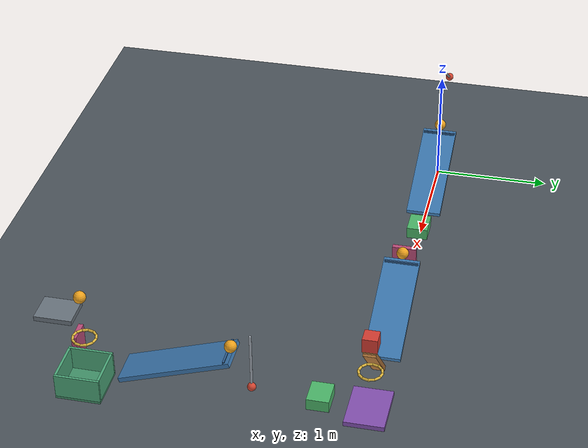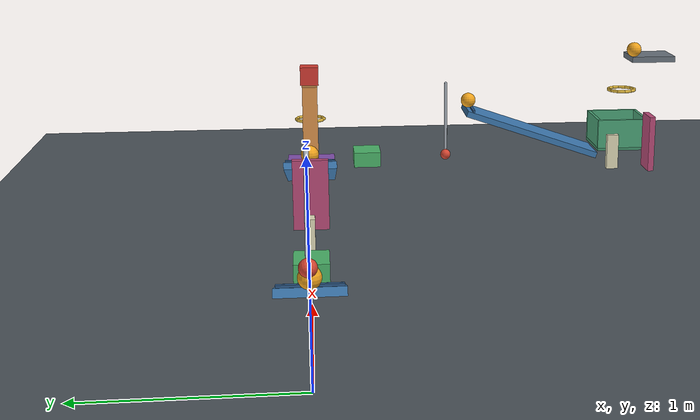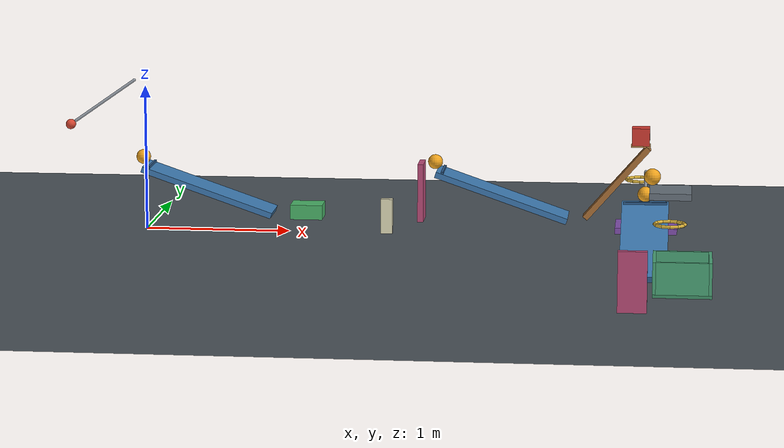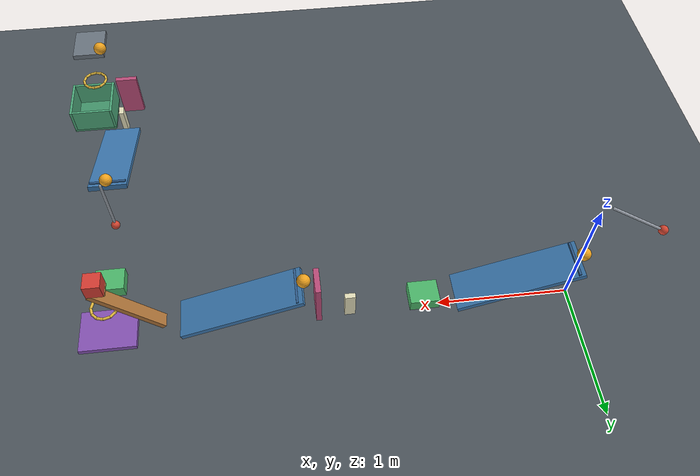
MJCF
<mujoco model="dimension_preserving_cascade">
  <compiler angle="degree" autolimits="true"/>
  <option timestep="0.002" gravity="0 0 -9.81" integrator="implicitfast" iterations="100" tolerance="1e-10"/>

  <!-- No actuators or initial velocities are used. This file has not been simulation-verified. -->
  <!-- solref damping ratio 0.690107 approximates restitution 0.05; MuJoCo does not expose an exact restitution coefficient. -->
  <!-- Ring1 retains the requested 0.16 m clear opening, which obstructs the requested rigid 0.12 m cube. -->
  <!-- Initial-overlap correction: box1 now spans x=3.52..3.88, clear of domino2 and flap2. -->
  <!-- Ring2 is laterally offset toward the relocated catch box; shelf1 and ball4 retain their initial positions. -->

  <visual>
    <headlight ambient="0.35 0.35 0.35" diffuse="0.7 0.7 0.7" specular="0.15 0.15 0.15"/>
    <global azimuth="130" elevation="-25"/>
  </visual>

  <worldbody>
    <light name="main_light" pos="2 -1 6" dir="0 0 -1" directional="true"/>
    <geom name="floor" type="plane" pos="0 0 0" size="10 10 0.1" friction="0.68 0 0" condim="3" solref="0.01 0.690107" solimp="0.95 0.95 0.001" rgba="0.30 0.33 0.36 1"/>

    <!-- Pendulum length is measured from the pivot to the bob center. -->
    <body name="pendulum1" pos="-0.075 0 1.041" euler="0 55 0">
      <joint name="pendulum1_hinge" type="hinge" axis="0 -1 0" damping="0.04" limited="true" range="0 130" solreflimit="0.004 1" solimplimit="0.99 0.99 0.001"/>
      <geom name="pendulum1_rod" type="capsule" fromto="0 0 0 0 0 -0.505" size="0.01" mass="0.10" friction="0.68 0 0" condim="3" solref="0.01 0.690107" solimp="0.95 0.95 0.001" rgba="0.65 0.68 0.72 1"/>
      <geom name="pendulum1_bob" type="sphere" pos="0 0 -0.55" size="0.035" mass="0.30" friction="0.68 0 0" condim="3" solref="0.01 0.690107" solimp="0.95 0.95 0.001" rgba="0.85 0.28 0.20 1"/>
    </body>

    <body name="ball1" pos="-0.016278 0 0.506565">
      <freejoint name="ball1_free"/>
      <geom name="ball1_sphere" type="sphere" size="0.05" mass="0.20" friction="0.68 0 0" condim="3" solref="0.01 0.690107" solimp="0.95 0.95 0.001" rgba="0.95 0.65 0.12 1"/>
    </body>

    <!-- Each ramp has a 0.95 m running surface, 0.30 m width, and 19 degree inclination. -->
    <!-- The downstream edge of each running surface is at z=0.15. -->
    <!-- Small upstream retaining lips prevent the later balls from immediately rolling away. -->
    <body name="ramp1" pos="0 0 0">
      <geom name="ramp1_surface" type="box" pos="0.442610 0 0.285735" euler="0 19 0" size="0.475 0.15 0.02" friction="0.68 0 0" condim="3" solref="0.01 0.690107" solimp="0.95 0.95 0.001" rgba="0.24 0.48 0.70 1"/>
      <geom name="ramp1_retaining_lip" type="box" pos="0.040 0 0.448" size="0.008 0.14 0.012" friction="0.68 0 0" condim="3" solref="0.01 0.690107" solimp="0.95 0.95 0.001" rgba="0.18 0.36 0.55 1"/>
    </body>

    <!-- Slide joints support the carts without additional floor friction. -->
    <body name="cart1" pos="1.128242 0 0.15">
      <joint name="cart1_slide" type="slide" axis="1 0 0" damping="0.20" limited="true" range="0 0.40" solreflimit="0.004 1" solimplimit="0.99 0.99 0.001"/>
      <geom name="cart1_chassis" type="box" size="0.11 0.09 0.05" mass="0.50" friction="0.68 0 0" condim="3" solref="0.01 0.690107" solimp="0.95 0.95 0.001" rgba="0.30 0.72 0.42 1"/>
    </body>

    <body name="domino1" pos="1.678242 0 0.12">
      <freejoint name="domino1_free"/>
      <geom name="domino1_tile" type="box" size="0.04 0.02 0.12" mass="0.25" friction="0.68 0 0" condim="3" solref="0.01 0.690107" solimp="0.95 0.95 0.001" rgba="0.90 0.88 0.74 1"/>
    </body>

    <body name="flap1" pos="1.918242 0 0.50">
      <joint name="flap1_hinge" type="hinge" axis="0 -1 0" damping="0.04" limited="true" range="0 65" solreflimit="0.004 1" solimplimit="0.99 0.99 0.001"/>
      <geom name="flap1_panel" type="box" pos="0 0 -0.20" size="0.02 0.10 0.20" mass="0.30" friction="0.68 0 0" condim="3" solref="0.01 0.690107" solimp="0.95 0.95 0.001" rgba="0.74 0.30 0.48 1"/>
    </body>

    <body name="ball2" pos="2.013722 0 0.506565">
      <freejoint name="ball2_free"/>
      <geom name="ball2_sphere" type="sphere" size="0.05" mass="0.20" friction="0.68 0 0" condim="3" solref="0.01 0.690107" solimp="0.95 0.95 0.001" rgba="0.95 0.65 0.12 1"/>
    </body>

    <body name="ramp2" pos="2.03 0 0">
      <geom name="ramp2_surface" type="box" pos="0.442610 0 0.285735" euler="0 19 0" size="0.475 0.15 0.02" friction="0.68 0 0" condim="3" solref="0.01 0.690107" solimp="0.95 0.95 0.001" rgba="0.24 0.48 0.70 1"/>
      <geom name="ramp2_retaining_lip" type="box" pos="0.040 0 0.448" size="0.008 0.14 0.012" friction="0.68 0 0" condim="3" solref="0.01 0.690107" solimp="0.95 0.95 0.001" rgba="0.18 0.36 0.55 1"/>
    </body>

    <!-- The beam starts inclined so its left end meets the low ramp exit while the block is elevated. -->
    <!-- The small carrying plate belongs to the seesaw; total seesaw mass remains 0.55 kg. -->
    <body name="seesaw1" pos="3.256552 0 0.382180" euler="0 -49 0">
      <joint name="seesaw1_hinge" type="hinge" axis="0 -1 0" damping="0.04" limited="true" range="0 40" solreflimit="0.004 1" solimplimit="0.99 0.99 0.001"/>
      <geom name="seesaw1_beam" type="box" size="0.325 0.05 0.02" mass="0.545" friction="0.68 0 0" condim="3" solref="0.01 0.690107" solimp="0.95 0.95 0.001" rgba="0.68 0.45 0.22 1"/>
      <geom name="seesaw1_carrying_plate" type="box" pos="0.30 0 0.05" euler="0 49 0" size="0.065 0.05 0.006" mass="0.005" friction="0.68 0 0" condim="3" solref="0.01 0.690107" solimp="0.95 0.95 0.001" rgba="0.78 0.55 0.30 1"/>
    </body>

    <body name="block1" pos="3.415634 0 0.707396">
      <freejoint name="block1_free"/>
      <geom name="block1_cube" type="box" size="0.06 0.06 0.06" mass="0.35" friction="0.68 0 0" condim="3" solref="0.01 0.690107" solimp="0.95 0.95 0.001" rgba="0.84 0.24 0.20 1"/>
    </body>

    <!-- Rings are closed capsule polygons circumscribing a 0.16 m clear circle. -->
    <!-- Capsule centerline apothem is 0.09 m; tube radius is 0.01 m. -->
    <body name="ring1" pos="3.415634 0 0.407396">
      <geom name="ring1_segment01" type="capsule" fromto="0.093175 0 0 0.080691 0.046588 0" size="0.01" friction="0.68 0 0" condim="3" solref="0.01 0.690107" solimp="0.95 0.95 0.001" rgba="0.88 0.72 0.24 1"/>
      <geom name="ring1_segment02" type="capsule" fromto="0.080691 0.046588 0 0.046588 0.080691 0" size="0.01" friction="0.68 0 0" condim="3" solref="0.01 0.690107" solimp="0.95 0.95 0.001" rgba="0.88 0.72 0.24 1"/>
      <geom name="ring1_segment03" type="capsule" fromto="0.046588 0.080691 0 0 0.093175 0" size="0.01" friction="0.68 0 0" condim="3" solref="0.01 0.690107" solimp="0.95 0.95 0.001" rgba="0.88 0.72 0.24 1"/>
      <geom name="ring1_segment04" type="capsule" fromto="0 0.093175 0 -0.046588 0.080691 0" size="0.01" friction="0.68 0 0" condim="3" solref="0.01 0.690107" solimp="0.95 0.95 0.001" rgba="0.88 0.72 0.24 1"/>
      <geom name="ring1_segment05" type="capsule" fromto="-0.046588 0.080691 0 -0.080691 0.046588 0" size="0.01" friction="0.68 0 0" condim="3" solref="0.01 0.690107" solimp="0.95 0.95 0.001" rgba="0.88 0.72 0.24 1"/>
      <geom name="ring1_segment06" type="capsule" fromto="-0.080691 0.046588 0 -0.093175 0 0" size="0.01" friction="0.68 0 0" condim="3" solref="0.01 0.690107" solimp="0.95 0.95 0.001" rgba="0.88 0.72 0.24 1"/>
      <geom name="ring1_segment07" type="capsule" fromto="-0.093175 0 0 -0.080691 -0.046588 0" size="0.01" friction="0.68 0 0" condim="3" solref="0.01 0.690107" solimp="0.95 0.95 0.001" rgba="0.88 0.72 0.24 1"/>
      <geom name="ring1_segment08" type="capsule" fromto="-0.080691 -0.046588 0 -0.046588 -0.080691 0" size="0.01" friction="0.68 0 0" condim="3" solref="0.01 0.690107" solimp="0.95 0.95 0.001" rgba="0.88 0.72 0.24 1"/>
      <geom name="ring1_segment09" type="capsule" fromto="-0.046588 -0.080691 0 0 -0.093175 0" size="0.01" friction="0.68 0 0" condim="3" solref="0.01 0.690107" solimp="0.95 0.95 0.001" rgba="0.88 0.72 0.24 1"/>
      <geom name="ring1_segment10" type="capsule" fromto="0 -0.093175 0 0.046588 -0.080691 0" size="0.01" friction="0.68 0 0" condim="3" solref="0.01 0.690107" solimp="0.95 0.95 0.001" rgba="0.88 0.72 0.24 1"/>
      <geom name="ring1_segment11" type="capsule" fromto="0.046588 -0.080691 0 0.080691 -0.046588 0" size="0.01" friction="0.68 0 0" condim="3" solref="0.01 0.690107" solimp="0.95 0.95 0.001" rgba="0.88 0.72 0.24 1"/>
      <geom name="ring1_segment12" type="capsule" fromto="0.080691 -0.046588 0 0.093175 0 0" size="0.01" friction="0.68 0 0" condim="3" solref="0.01 0.690107" solimp="0.95 0.95 0.001" rgba="0.88 0.72 0.24 1"/>
    </body>

    <!-- Door1 is a horizontal panel on a clockwise vertical hinge. -->
    <body name="door1" pos="3.25 0.16 0.077396">
      <joint name="door1_hinge" type="hinge" axis="0 0 -1" damping="0.04" limited="true" range="0 70" solreflimit="0.004 1" solimplimit="0.99 0.99 0.001"/>
      <geom name="door1_panel" type="box" pos="0.21 -0.16 0" size="0.21 0.16 0.02" mass="0.45" friction="0.68 0 0" condim="3" solref="0.01 0.690107" solimp="0.95 0.95 0.001" rgba="0.52 0.32 0.70 1"/>
    </body>

    <body name="cart2" pos="3.46 -0.38 0.127396">
      <joint name="cart2_slide" type="slide" axis="0 -1 0" damping="0.20" limited="true" range="0 0.42" solreflimit="0.004 1" solimplimit="0.99 0.99 0.001"/>
      <geom name="cart2_chassis" type="box" size="0.11 0.09 0.05" mass="0.50" friction="0.68 0 0" condim="3" solref="0.01 0.690107" solimp="0.95 0.95 0.001" rgba="0.30 0.72 0.42 1"/>
    </body>

    <body name="pendulum2" pos="3.46 -0.925 0.627396">
      <joint name="pendulum2_hinge" type="hinge" axis="-1 0 0" damping="0.04" limited="true" range="0 38" solreflimit="0.004 1" solimplimit="0.99 0.99 0.001"/>
      <geom name="pendulum2_rod" type="capsule" fromto="0 0 0 0 0 -0.455" size="0.01" mass="0.08" friction="0.68 0 0" condim="3" solref="0.01 0.690107" solimp="0.95 0.95 0.001" rgba="0.65 0.68 0.72 1"/>
      <geom name="pendulum2_bob" type="sphere" pos="0 0 -0.50" size="0.035" mass="0.27" friction="0.68 0 0" condim="3" solref="0.01 0.690107" solimp="0.95 0.95 0.001" rgba="0.85 0.28 0.20 1"/>
    </body>

    <body name="ball3" pos="3.46 -1.080998 0.506565">
      <freejoint name="ball3_free"/>
      <geom name="ball3_sphere" type="sphere" size="0.05" mass="0.20" friction="0.68 0 0" condim="3" solref="0.01 0.690107" solimp="0.95 0.95 0.001" rgba="0.95 0.65 0.12 1"/>
    </body>

    <body name="ramp3" pos="3.46 -1.064720 0">
      <geom name="ramp3_surface" type="box" pos="0 -0.442610 0.285735" euler="19 0 0" size="0.15 0.475 0.02" friction="0.68 0 0" condim="3" solref="0.01 0.690107" solimp="0.95 0.95 0.001" rgba="0.24 0.48 0.70 1"/>
      <geom name="ramp3_retaining_lip" type="box" pos="0 -0.040 0.448" size="0.14 0.008 0.012" friction="0.68 0 0" condim="3" solref="0.01 0.690107" solimp="0.95 0.95 0.001" rgba="0.18 0.36 0.55 1"/>
    </body>

    <body name="domino2" pos="3.46 -2.102962 0.12" euler="0 0 90">
      <freejoint name="domino2_free"/>
      <geom name="domino2_tile" type="box" size="0.04 0.02 0.12" mass="0.25" friction="0.68 0 0" condim="3" solref="0.01 0.690107" solimp="0.95 0.95 0.001" rgba="0.90 0.88 0.74 1"/>
    </body>

    <!-- Flap2 uses an offset hinge so its panel can rise toward the elevated shelf. -->
    <body name="flap2" pos="3.40 -1.522962 0.40">
      <joint name="flap2_hinge" type="hinge" axis="-1 0 0" damping="0.04" limited="true" range="0 60" solreflimit="0.004 1" solimplimit="0.99 0.99 0.001"/>
      <geom name="flap2_panel" type="box" pos="0 -0.82 -0.20" size="0.09 0.02 0.19" mass="0.28" friction="0.68 0 0" condim="3" solref="0.01 0.690107" solimp="0.95 0.95 0.001" rgba="0.74 0.30 0.48 1"/>
    </body>

    <body name="ball4" pos="3.51 -2.244720 0.83">
      <freejoint name="ball4_free"/>
      <geom name="ball4_sphere" type="sphere" size="0.05" mass="0.20" friction="0.68 0 0" condim="3" solref="0.01 0.690107" solimp="0.95 0.95 0.001" rgba="0.95 0.65 0.12 1"/>
    </body>

    <body name="shelf1" pos="3.62 -2.384720 0.76" euler="0 0 90">
      <geom name="shelf1_platform" type="box" size="0.15 0.125 0.02" friction="0.68 0 0" condim="3" solref="0.01 0.690107" solimp="0.95 0.95 0.001" rgba="0.42 0.46 0.50 1"/>
    </body>

    <body name="ring2" pos="3.62 -2.194720 0.53">
      <geom name="ring2_segment01" type="capsule" fromto="0.093175 0 0 0.080691 0.046588 0" size="0.01" friction="0.68 0 0" condim="3" solref="0.01 0.690107" solimp="0.95 0.95 0.001" rgba="0.88 0.72 0.24 1"/>
      <geom name="ring2_segment02" type="capsule" fromto="0.080691 0.046588 0 0.046588 0.080691 0" size="0.01" friction="0.68 0 0" condim="3" solref="0.01 0.690107" solimp="0.95 0.95 0.001" rgba="0.88 0.72 0.24 1"/>
      <geom name="ring2_segment03" type="capsule" fromto="0.046588 0.080691 0 0 0.093175 0" size="0.01" friction="0.68 0 0" condim="3" solref="0.01 0.690107" solimp="0.95 0.95 0.001" rgba="0.88 0.72 0.24 1"/>
      <geom name="ring2_segment04" type="capsule" fromto="0 0.093175 0 -0.046588 0.080691 0" size="0.01" friction="0.68 0 0" condim="3" solref="0.01 0.690107" solimp="0.95 0.95 0.001" rgba="0.88 0.72 0.24 1"/>
      <geom name="ring2_segment05" type="capsule" fromto="-0.046588 0.080691 0 -0.080691 0.046588 0" size="0.01" friction="0.68 0 0" condim="3" solref="0.01 0.690107" solimp="0.95 0.95 0.001" rgba="0.88 0.72 0.24 1"/>
      <geom name="ring2_segment06" type="capsule" fromto="-0.080691 0.046588 0 -0.093175 0 0" size="0.01" friction="0.68 0 0" condim="3" solref="0.01 0.690107" solimp="0.95 0.95 0.001" rgba="0.88 0.72 0.24 1"/>
      <geom name="ring2_segment07" type="capsule" fromto="-0.093175 0 0 -0.080691 -0.046588 0" size="0.01" friction="0.68 0 0" condim="3" solref="0.01 0.690107" solimp="0.95 0.95 0.001" rgba="0.88 0.72 0.24 1"/>
      <geom name="ring2_segment08" type="capsule" fromto="-0.080691 -0.046588 0 -0.046588 -0.080691 0" size="0.01" friction="0.68 0 0" condim="3" solref="0.01 0.690107" solimp="0.95 0.95 0.001" rgba="0.88 0.72 0.24 1"/>
      <geom name="ring2_segment09" type="capsule" fromto="-0.046588 -0.080691 0 0 -0.093175 0" size="0.01" friction="0.68 0 0" condim="3" solref="0.01 0.690107" solimp="0.95 0.95 0.001" rgba="0.88 0.72 0.24 1"/>
      <geom name="ring2_segment10" type="capsule" fromto="0 -0.093175 0 0.046588 -0.080691 0" size="0.01" friction="0.68 0 0" condim="3" solref="0.01 0.690107" solimp="0.95 0.95 0.001" rgba="0.88 0.72 0.24 1"/>
      <geom name="ring2_segment11" type="capsule" fromto="0.046588 -0.080691 0 0.080691 -0.046588 0" size="0.01" friction="0.68 0 0" condim="3" solref="0.01 0.690107" solimp="0.95 0.95 0.001" rgba="0.88 0.72 0.24 1"/>
      <geom name="ring2_segment12" type="capsule" fromto="0.080691 -0.046588 0 0.093175 0 0" size="0.01" friction="0.68 0 0" condim="3" solref="0.01 0.690107" solimp="0.95 0.95 0.001" rgba="0.88 0.72 0.24 1"/>
    </body>

    <!-- Inner footprint is 0.32 by 0.32 m; walls are 0.20 m high and 0.02 m thick. -->
    <!-- The box floor top is z=0.13, giving a resting ball center at z=0.18. -->
    <!-- Initial x extents: domino2 ends at 3.48, flap2 ends at 3.49, and box1 begins at 3.52. -->
    <body name="box1" pos="3.70 -2.194720 0.12">
      <geom name="box1_bottom" type="box" size="0.18 0.18 0.01" friction="0.68 0 0" condim="3" solref="0.01 0.690107" solimp="0.95 0.95 0.001" rgba="0.26 0.58 0.42 1"/>
      <geom name="box1_wall_left" type="box" pos="-0.17 0 0.11" size="0.01 0.18 0.10" friction="0.68 0 0" condim="3" solref="0.01 0.690107" solimp="0.95 0.95 0.001" rgba="0.30 0.66 0.48 1"/>
      <geom name="box1_wall_right" type="box" pos="0.17 0 0.11" size="0.01 0.18 0.10" friction="0.68 0 0" condim="3" solref="0.01 0.690107" solimp="0.95 0.95 0.001" rgba="0.30 0.66 0.48 1"/>
      <geom name="box1_wall_front" type="box" pos="0 -0.17 0.11" size="0.16 0.01 0.10" friction="0.68 0 0" condim="3" solref="0.01 0.690107" solimp="0.95 0.95 0.001" rgba="0.30 0.66 0.48 1"/>
      <geom name="box1_wall_back" type="box" pos="0 0.17 0.11" size="0.16 0.01 0.10" friction="0.68 0 0" condim="3" solref="0.01 0.690107" solimp="0.95 0.95 0.001" rgba="0.30 0.66 0.48 1"/>
    </body>
  </worldbody>

  <keyframe>
    <!-- Omitted qpos uses the model's initial configuration; omitted qvel is zero. -->
    <key name="start" time="0"/>
  </keyframe>
</mujoco>
